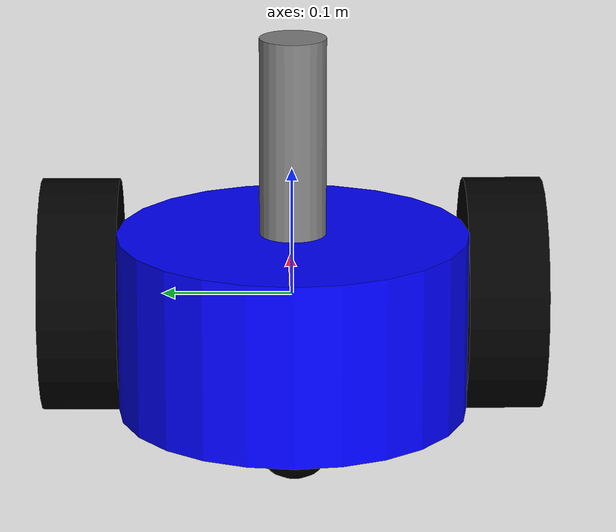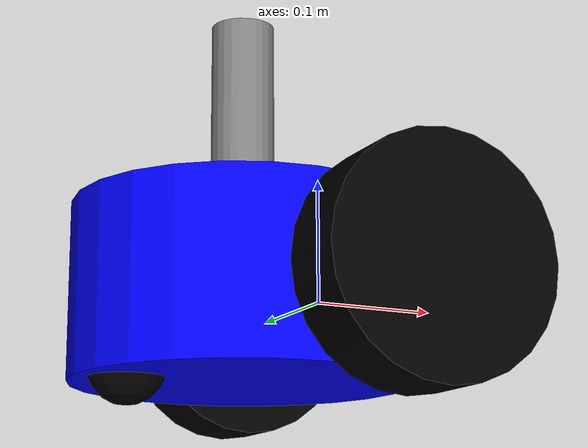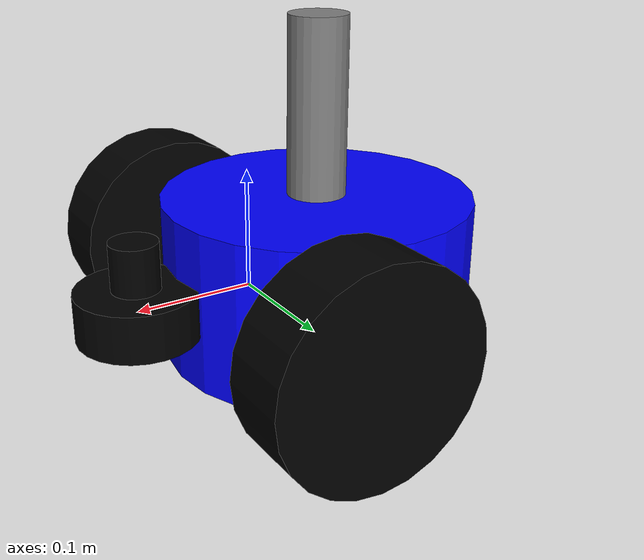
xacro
<?xml version="1.0"?>
<robot name='robot' xmlns:xacro="http://ros.org/wiki/xacro">

  <xacro:include filename="$(find robot_description)/urdf/gazebo.urdf.xacro" />
  <!--xacro:include
  filename="$(find robot_description)/urdf/lidar.urdf.xacro" /-->
  <!--xacro:include
  filename="$(find robot_description)/urdf/depth.urdf.xacro" /-->

  <xacro:property name="chassis_length" value="0.335" />
  <xacro:property name="chassis_width" value="0.265" />
  <xacro:property name="chassis_height" value="0.138" />
  <xacro:property name="chassis_radius" value="${chassis_width / 2}" />
  <xacro:property name="wheel_radius" value="${chassis_height * 1.3 / 2}" />
  <xacro:property name="wheel_thickness" value="0.06" />
  <xacro:property name="wheel_mass" value="0.05" />
  <xacro:property name="wheel_offset_x" value="${chassis_length / 2 + 0.2 * chassis_length}" />
  <xacro:property name="wheel_offset_y" value="${chassis_width / 2 + wheel_thickness / 2}" />
  <xacro:property name="wheel_offset_z" value="${chassis_height / 2.0}" />
  <xacro:property name="caster_wheel_radius" value="0.03" />
  <xacro:property name="caster_wheel_mass" value="0.01" />
  <xacro:property name="caster_wheel_offset_x" value="0.075" />
  <xacro:property name="caster_wheel_offset_z"
    value="${wheel_offset_z - wheel_radius + caster_wheel_radius}" />
  <xacro:property name="mass" value="1.0" />

  <xacro:property name="antenna_radius" value="0.025" />
  <xacro:property name="antenna_length" value="0.15" />
  <xacro:property name="antenna_mass" value="0.01" />
  <xacro:property name="antenna_color" value="gray" />

  <!-- Координаты установки антенны относительно корпуса -->
  <xacro:property name="antenna_x" value="${chassis_length / 2}" />
  <xacro:property name="antenna_y" value="0" />
  <xacro:property name="antenna_z" value="${chassis_height}" />

  <xacro:property name="laser_radius" value="0.05" />
  <xacro:property name="laser_length" value="0.04" />

  <xacro:property name="depth_cam_radius" value="0.02" />
  <xacro:property name="depth_cam_length" value="0.04" />

  <xacro:property name="imu_length" value="0.03" />
  <xacro:property name="imu_width" value="0.03" />
  <xacro:property name="imu_height" value="0.01" />

  <material name="white">
    <color rgba="1 1 1 1" />
  </material>

  <material name="orange">
    <color rgba="0.98 0.7 0.53 0.95" />
  </material>

  <material name="blue">
    <color rgba="0 0 1 1" />
  </material>

  <material name="black">
    <color rgba="0 0 0 1" />
  </material>

  <material name="red">
    <color rgba="1 0 0 1" />
  </material>

  <material name="gray">
    <color rgba="0.5 0.5 0.5 1" />
  </material>

  <link name="base_link">
  </link>

  <link name="base_footprint">
  </link>

  <joint name="base_footprint_joint" type="fixed">
    <parent link="base_link" />
    <child link="base_footprint" />
    <origin xyz="0 0 -${chassis_height}" rpy="0 0 0" />
  </joint>

  <joint name="chassis_joint" type="fixed">
    <parent link="base_link" />
    <child link="chassis" />
    <origin xyz="${-wheel_offset_x} 0 ${-wheel_offset_z}" />
  </joint>

  <link name='chassis'>
    <inertial>
      <origin xyz="${chassis_length/2} 0 ${chassis_height/2}" rpy="0 0 0" />
      <mass value="${mass}" />
      <inertia ixx="${(1/12) * mass * (3*chassis_radius*chassis_radius + chassis_height*chassis_height)}"
        ixy="0.0" ixz="0.0"
        iyy="${(1/12) * mass * (3*chassis_radius*chassis_radius + chassis_height*chassis_height)}"
        iyz="0.0"
        izz="${(1/2) * mass * chassis_radius*chassis_radius}" />
    </inertial>
    <visual>
      <origin xyz="${chassis_length/2} 0 ${chassis_height/2}" />
      <geometry>
        <cylinder radius="${chassis_radius}" length="${chassis_height}" />
      </geometry>
      <material name="blue" />
    </visual>
    <collision>
      <origin xyz="${chassis_length/2} 0 ${chassis_height/2}" />
      <geometry>
        <cylinder radius="${chassis_radius}" length="${chassis_height}" />
      </geometry>
    </collision>
  </link>

  <gazebo reference="chassis">
    <material>Gazebo/Blue</material>
  </gazebo>

  <joint name="left_wheel_joint" type="continuous">
    <parent link="base_link" />
    <child link="left_wheel" />
    <origin xyz="0 ${wheel_offset_y} 0" rpy="-${pi/2} 0 0" />
    <axis xyz="0 0 1" />
  </joint>

  <link name="left_wheel">
    <visual>
      <geometry>
        <cylinder radius="${wheel_radius}" length="${wheel_thickness}" />
      </geometry>
      <material name="black" />
    </visual>
    <collision>
      <geometry>
        <sphere radius="${wheel_radius}" />
      </geometry>
    </collision>
    <inertial>
      <origin xyz="0 0 0" rpy="0 0 0" />
      <mass value="${wheel_mass}" />
      <inertia
        ixx="${(1/12) * wheel_mass * (3*wheel_radius*wheel_radius + wheel_thickness*wheel_thickness)}"
        ixy="0.0" ixz="0.0"
        iyy="${(1/12) * wheel_mass * (3*wheel_radius*wheel_radius + wheel_thickness*wheel_thickness)}"
        iyz="0.0"
        izz="${(1/2) * wheel_mass * (wheel_radius*wheel_radius)}" />
    </inertial>
  </link>

  <gazebo reference="left_wheel">
    <material>Gazebo/Black</material>
  </gazebo>

  <joint name="right_wheel_joint" type="continuous">
    <parent link="base_link" />
    <child link="right_wheel" />
    <origin xyz="0 ${-wheel_offset_y} 0" rpy="${pi/2} 0 0" />
    <axis xyz="0 0 -1" />
  </joint>

  <link name="right_wheel">
    <visual>
      <geometry>
        <cylinder radius="${wheel_radius}" length="${wheel_thickness}" />
      </geometry>
      <material name="black" />
    </visual>
    <collision>
      <geometry>
        <sphere radius="${wheel_radius}" />
      </geometry>
    </collision>
    <inertial>
      <origin xyz="0 0 0" rpy="0 0 0" />
      <mass value="${wheel_mass}" />
      <inertia
        ixx="${(1/12) * wheel_mass * (3*wheel_radius*wheel_radius + wheel_thickness*wheel_thickness)}"
        ixy="0.0" ixz="0.0"
        iyy="${(1/12) * wheel_mass * (3*wheel_radius*wheel_radius + wheel_thickness*wheel_thickness)}"
        iyz="0.0"
        izz="${(1/2) * wheel_mass * (wheel_radius*wheel_radius)}" />
    </inertial>
  </link>

  <gazebo reference="right_wheel">
    <material>Gazebo/Black</material>
  </gazebo>

  <joint name="caster_wheel_joint" type="fixed">
    <parent link="chassis" />
    <child link="caster_wheel" />
    <origin xyz="${caster_wheel_offset_x} 0 ${caster_wheel_offset_z}" />
  </joint>

  <link name="caster_wheel">
    <visual>
      <geometry>
        <sphere radius="${caster_wheel_radius}" />
      </geometry>
      <material name="black" />
    </visual>
    <collision>
      <geometry>
        <sphere radius="${caster_wheel_radius}" />
      </geometry>
    </collision>
    <inertial>
      <origin xyz="0 0 0" rpy="0 0 0" />
      <mass value="${caster_wheel_mass}" />
      <inertia ixx="${(2/5) * caster_wheel_mass * (caster_wheel_radius*caster_wheel_radius)}"
        ixy="0.0" ixz="0.0"
        iyy="${(2/5) * caster_wheel_mass * (caster_wheel_radius*caster_wheel_radius)}" iyz="0.0"
        izz="${(2/5) * caster_wheel_mass * (caster_wheel_radius*caster_wheel_radius)}" />
    </inertial>
  </link>

  <gazebo reference="caster_wheel">
    <material>Gazebo/Black</material>
    <mu1 value="0.001" />
    <mu2 value="0.001" />
  </gazebo>

  <!-- Антенна (центральная) -->
  <link name="antenna">
    <inertial>
      <origin xyz="0 0 ${antenna_length/2}" rpy="0 0 0" />
      <mass value="${antenna_mass}" />
      <inertia
        ixx="${(1/12) * antenna_mass * (3*antenna_radius*antenna_radius + antenna_length*antenna_length)}"
        ixy="0.0" ixz="0.0"
        iyy="${(1/12) * antenna_mass * (3*antenna_radius*antenna_radius + antenna_length*antenna_length)}"
        iyz="0.0"
        izz="${(1/2) * antenna_mass * antenna_radius*antenna_radius}" />
    </inertial>

    <visual>
      <origin xyz="0 0 ${antenna_length/2}" rpy="0 0 0" />
      <geometry>
        <cylinder radius="${antenna_radius}" length="${antenna_length}" />
      </geometry>
      <material name="${antenna_color}" />
    </visual>

    <collision>
      <origin xyz="0 0 ${antenna_length/2}" rpy="0 0 0" />
      <geometry>
        <cylinder radius="${antenna_radius}" length="${antenna_length}" />
      </geometry>
    </collision>
  </link>

  <joint name="antenna_joint" type="fixed">
    <parent link="chassis" />
    <child link="antenna" />
    <origin xyz="${antenna_x} ${antenna_y} ${antenna_z}" rpy="0 0 0" />
  </joint>

  <!-- Gazebo материал для антенны -->
  <gazebo reference="antenna">
    <material>Gazebo/Gray</material>
  </gazebo>

  <link name="laser_frame">
    <visual>
      <geometry>
        <cylinder radius="${laser_radius}" length="${laser_length}" />
      </geometry>
      <material name="black" />
    </visual>
    <collision>
      <geometry>
        <cylinder radius="${laser_radius}" length="${laser_length}" />
      </geometry>
    </collision>
    <inertial>
      <mass value="0.1" />
      <inertia ixx="1e-3" ixy="0" ixz="0" iyy="1e-3" iyz="0" izz="1e-3" />
    </inertial>
  </link>

  <joint name="laser_joint" type="fixed">
    <parent link="chassis" />
    <child link="laser_frame" />
    <origin xyz="${chassis_length} 0 ${chassis_height/2}" rpy="0 0 0" />
  </joint>

  <gazebo reference="laser_frame">
    <sensor name='laser_frame' type='gpu_lidar'>
      <topic>
        scan</topic>
      <pose relative_to='laser_frame'>0 0 0 0 0 0</pose>
      <update_rate>
        5</update_rate>
      <ray>
        <scan>
          <horizontal>
            <samples>50</samples>
            <resolution>1</resolution>
            <min_angle>-1.396263</min_angle>
            <max_angle>1.396263</max_angle>
          </horizontal>
          <vertical>
            <samples>20</samples>
            <resolution>1</resolution>
            <min_angle>-0.65</min_angle>
            <max_angle>0.65</max_angle>
          </vertical>
        </scan>
        <range>
          <min>0.08</min>
          <max>10.0</max>
          <resolution>0.01</resolution>
        </range>
      </ray>
      <always_on>1</always_on>
      <visualize>
        true</visualize>
    </sensor>
  </gazebo>

  <link name="camera_link">
    <visual>
      <geometry>
        <cylinder radius="${depth_cam_radius}" length="${depth_cam_length}" />
      </geometry>
      <material name="black" />
    </visual>
    <collision>
      <geometry>
        <cylinder radius="${depth_cam_radius}" length="${depth_cam_length}" />
      </geometry>
    </collision>
    <inertial>
      <mass value="0.1" />
      <inertia ixx="1e-3" ixy="0" ixz="0" iyy="1e-3" iyz="0" izz="1e-3" />
    </inertial>
  </link>

  <joint name="camera_joint" type="fixed">
    <parent link="chassis" />
    <child link="camera_link" />
    <origin xyz="${chassis_length} 0 ${chassis_height/2 + depth_cam_radius*2.01}"
      rpy="0 0 0" />
  </joint>

  <gazebo reference="camera_link">
    <sensor name="depth_camera" type="depth">
      <update_rate>6</update_rate>
      <always_on>1</always_on>
      <camera>
        <horizontal_fov>1.51843645</horizontal_fov>
        <image>
          <width>848</width>
          <height>480</height>
          <format>R_FLOAT32</format>
        </image>
        <clip>
          <near>0.1</near>
          <far>10</far>
        </clip>
        <lens>
          <intrinsics>
            <fx>421.61578369140625</fx>
            <fy>421.61578369140625</fy>
            <cx>422.2854309082031</cx>
            <cy>236.57237243652344</cy>
            <s>0</s>
          </intrinsics>
        </lens>
      </camera>
      <point_cloud_topic>/robot/points</point_cloud_topic>
    </sensor>
  </gazebo>

  <link name="imu_link">
    <visual>
      <origin xyz="${imu_length/2} 0 ${imu_height/2}" />
      <geometry>
        <box size="${imu_length} ${imu_width} ${imu_height}" />
      </geometry>
      <material name="black" />
    </visual>
  </link>

  <joint name="imu_joint" type="fixed">
    <parent link="chassis" />
    <child link="imu_link" />
    <origin xyz="${wheel_offset_x} 0 ${wheel_offset_z}"
      rpy="0 0 0" />
  </joint>

  <gazebo reference="imu_link">
    <sensor name="imu_sensor" type="imu">
      <always_on>1</always_on>
      <update_rate>1</update_rate>
      <visualize>true</visualize>
      <topic>imu</topic>
    </sensor>
  </gazebo>

</robot>
